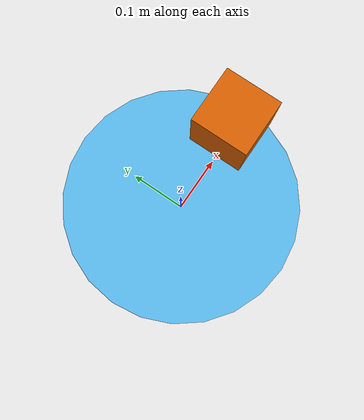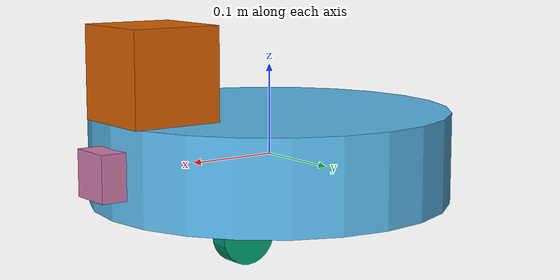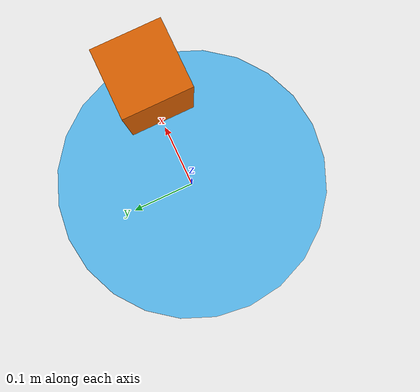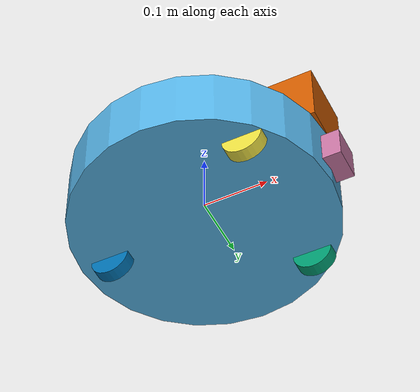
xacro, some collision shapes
<?xml version='1.0'?>

<robot name="cleaning_bot" xmlns:xacro="http://www.ros.org/wiki/xacro">

  <xacro:include filename="$(find udacity_bot)/urdf/cleaning_bot.gazebo" />
  <link name="robot_footprint"></link>

  <joint name="robot_footprint_joint" type="fixed">
    <origin xyz="0 0 0" rpy="0 0 0" />
    <parent link="robot_footprint"/>
    <child link="chassis" />
  </joint>

  <link name='chassis'>
    <pose>0 0 0.1 0 0 0</pose>

    <inertial>
      <mass value="15.0"/>
      <origin xyz="0.0 0 0" rpy=" 0 0 0"/>
      <inertia
          ixx="0.1" ixy="0" ixz="0"
          iyy="0.1" iyz="0"
          izz="0.1"
      />
    </inertial>

    <collision name='collision'>
      <origin xyz="0 0 0" rpy=" 0 0 0"/>
      <geometry>
        <cylinder radius="0.2" length="0.1"/>
      </geometry>
    </collision>

    <visual name='chassis_visual'>
      <origin xyz="0 0 0" rpy=" 0 0 0"/>
      <geometry>
        <cylinder radius="0.2" length="0.1"/>
      </geometry>
    </visual>
  </link>

  <link name='left_wheel'>

    <inertial>
      <mass value="3.0"/>
      <origin xyz="0.0 0 0" rpy=" 0 1.5707 1.5707"/>
      <inertia
          ixx="0.1" ixy="0" ixz="0"
          iyy="0.1" iyz="0"
          izz="0.1"
      />
    </inertial>

    <collision name='left_wheel_collision'>
      <origin xyz="0 0 0" rpy=" 0 1.5707 1.5707"/>
      <geometry>
        <cylinder length="0.02" radius="0.03"/>
      </geometry>
    </collision>

    <visual name='left_wheel_visual'>
      <origin xyz="0 0 0" rpy=" 0 1.5707 1.5707"/>
      <geometry>
        <cylinder length="0.02" radius="0.03"/>
      </geometry>
    </visual>
  </link>

  <link name='right_wheel'>

    <inertial>
      <mass value="3.0"/>
      <origin xyz="0.0 0 0" rpy=" 0 1.5707 1.5707"/>
      <inertia
          ixx="0.1" ixy="0" ixz="0"
          iyy="0.1" iyz="0"
          izz="0.1"
      />
    </inertial>

    <collision name='right_wheel_collision'>
      <origin xyz="0 0 0" rpy=" 0 1.5707 1.5707"/>
      <geometry>
        <cylinder length="0.02" radius="0.03"/>
      </geometry>
    </collision>

    <visual name='right_wheel_visual'>
      <origin xyz="0 0 0" rpy=" 0 1.5707 1.5707"/>
      <geometry>
        <cylinder length="0.02" radius="0.03"/>
      </geometry>
    </visual>
  </link>

  <link name='back_wheel'>

    <inertial>
      <mass value="3.0"/>
      <origin xyz="0.0 0 0" rpy=" 0 1.5707 1.5707"/>
      <inertia
          ixx="0.1" ixy="0" ixz="0"
          iyy="0.1" iyz="0"
          izz="0.1"
      />
    </inertial>

    <collision name='back_wheel_collision'>
      <origin xyz="0 0 0" rpy=" 0 1.5707 1.5707"/>
      <geometry>
        <cylinder length="0.02" radius="0.03"/>
      </geometry>
    </collision>

    <visual name='back_wheel_visual'>
      <origin xyz="0 0 0" rpy=" 0 1.5707 1.5707"/>
      <geometry>
        <cylinder length="0.02" radius="0.03"/>
      </geometry>
    </visual>
  </link>

  <link name='hokuyo'>
    <inertial>
      <mass value="0.1"/>
      <origin xyz="0 0 0" rpy=" 0 0 0"/>
      <inertia
          ixx="1e-6" ixy="0" ixz="0"
          iyy="1e-6" iyz="0"
          izz="1e-6"
      />
    </inertial>

    <collision name='hokuyo_collision'>
      <origin xyz="0 0 0" rpy=" 0 0 0"/>
      <geometry>
        <box size="0.1 0.1 0.1"/>
      </geometry>
    </collision>

    <visual name='hokuyo_visual'>
      <origin xyz="0 0 0" rpy=" 0 0 0"/>
      <geometry>
        <mesh filename="package://udacity_bot/meshes/hokuyo.dae"/>
      </geometry>
    </visual>
  </link>

  <joint type="continuous" name="left_wheel_hinge">
    <origin xyz="0.12 0.12 -0.05" rpy="0 0 0"/>
    <child link="left_wheel"/>
    <parent link="chassis"/>
    <axis xyz="0 1 0" rpy="0 0 0"/>
    <limit effort="10000" velocity="1000"/>
    <joint_properties damping="1.0" friction="1.0"/>
  </joint>

  <joint type="continuous" name="right_wheel_hinge">
    <origin xyz="0.12 -0.12 -0.05" rpy="0 0 0"/>
    <child link="right_wheel"/>
    <parent link="chassis"/>
    <axis xyz="0 1 0" rpy="0 0 0"/>
    <limit effort="10000" velocity="1000"/>
    <joint_properties damping="1.0" friction="1.0"/>
  </joint>

  <joint type="continuous" name="back_wheel_hinge">
    <origin xyz="-0.15 0 -0.05" rpy="0 0 0"/>
    <child link="back_wheel"/>
    <parent link="chassis"/>
    <axis xyz="0 1 0" rpy="0 0 0"/>
    <limit effort="10000" velocity="1000"/>
    <joint_properties damping="1.0" friction="1.0"/>
  </joint>

  <joint type="fixed" name="hokuyo_joint">
    <origin xyz="0.15 0 0.1" rpy="0 0 0"/>
    <child link="hokuyo"/>
    <parent link="chassis"/>
    <limit effort="10000" velocity="1000"/>
    <joint_properties damping="1.0" friction="1.0"/>
  </joint>

      <!--camera-->
    <link name="camera">
        <inertial>
            <mass value="0.1">
            </mass>
            <origin rpy="0 0 0" xyz="0.0 0 0">
            </origin>
            <inertia ixx="1e-6" ixy="0" ixz="0" iyy="1e-6" iyz="0" izz="1e-6">
            </inertia>
        </inertial>
        <collision name="collision">
            <origin rpy="0 0 0" xyz="0.0 0 0">
            </origin>
            <geometry>
                <box size="0.05 0.05 0.05">
                </box>
            </geometry>
        </collision>
        <visual name="camera_visual">
            <origin rpy=" 0 0 0" xyz="0.0 0 0">
            </origin>
            <geometry>
                <box size="0.05 0.05 0.05">
                </box>
            </geometry>
         </visual>
    </link>
    <joint name="camera_joint" type="fixed">
        <origin rpy="0 0 0" xyz="0.2 0 0">
        </origin>
        <child link="camera">
        </child>
        <parent link="chassis">
        </parent>
    </joint>
    <link name="camera_rgbd_frame"/>
    <joint name="camera_frame_joint" type="fixed">
        <origin rpy="-1.5707 0 -1.5707" xyz="0 0 0"/>
        <parent link="camera"/>
        <child link="camera_rgbd_frame"/>
	</joint>
</robot>
